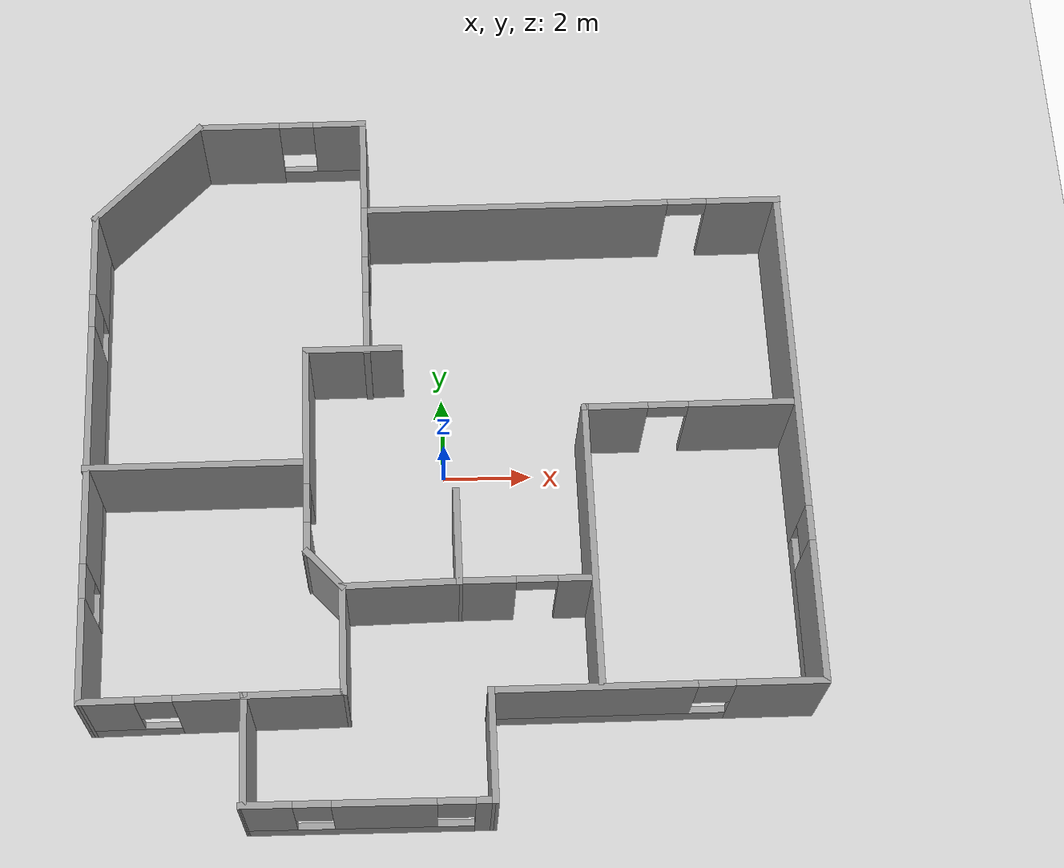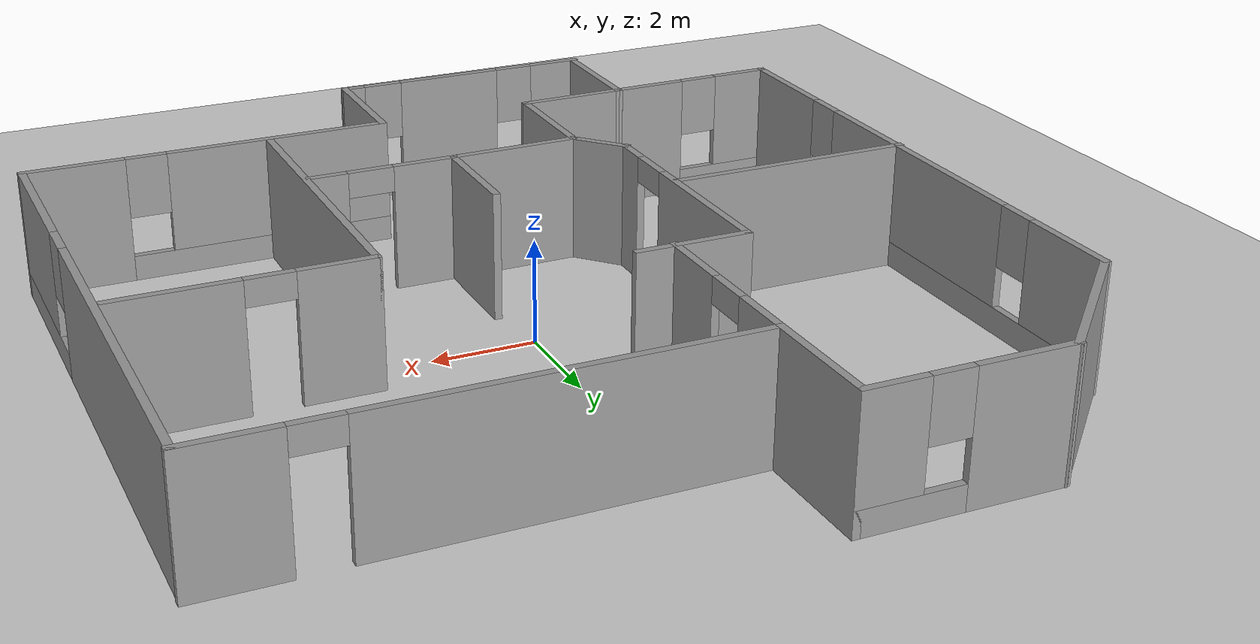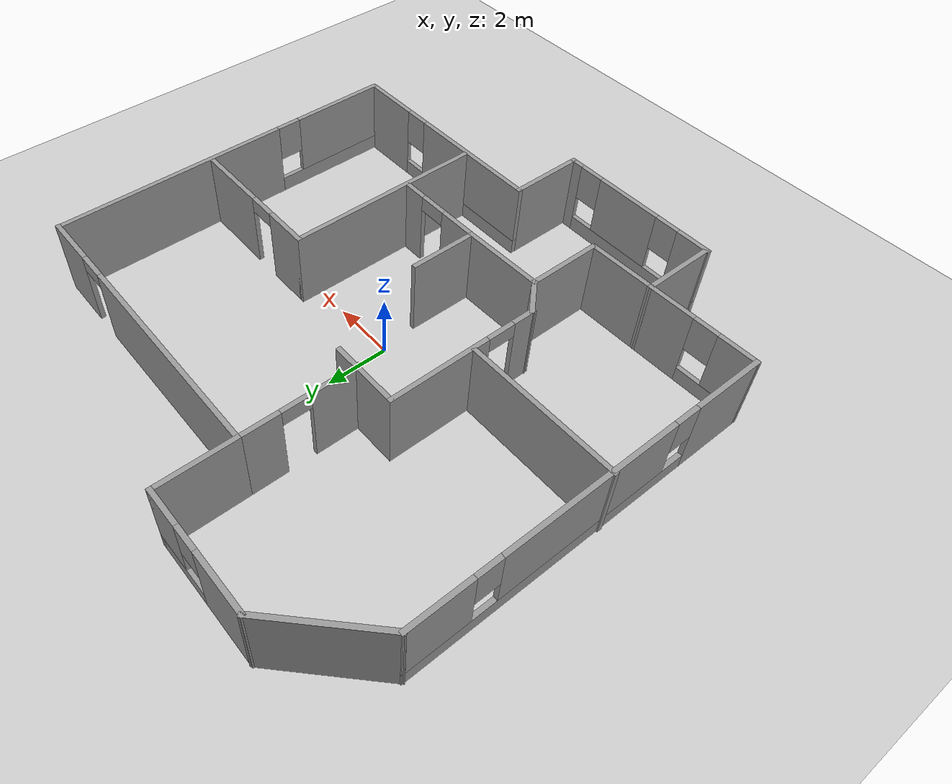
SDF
<?xml version='1.0'?>
<sdf version='1.6'>

 <world name="my_map">
    <!-- A global light source -->
    <include>
      <uri>model://sun</uri>
    </include>
    <!-- A ground plane -->
    <include>
      <uri>model://ground_plane</uri>
    </include>

    <model name='my_map'>
      <pose frame=''>0 0 0 0 -0 0</pose>
      <link name='Wall_0'>
        <pose frame=''>-3.05328 -0.191303 0 0 -0 -1.5708</pose>
        <visual name='Wall_0_Visual_0'>
          <pose frame=''>-0.840724 0 1.25 0 -0 0</pose>
          <geometry>
            <box>
              <size>3.31855 0.15 2.5</size>
            </box>
          </geometry>
          <material>
            <script>
              <uri>file://media/materials/scripts/gazebo.material</uri>
              <name>Gazebo/Grey</name>
            </script>
            <ambient>1 1 1 1</ambient>
          </material>
          <meta>
            <layer>0</layer>
          </meta>
        </visual>
        <collision name='Wall_0_Collision_0'>
          <geometry>
            <box>
              <size>3.31855 0.15 2.5</size>
            </box>
          </geometry>
          <pose frame=''>-0.840724 0 1.25 0 -0 0</pose>
        </collision>
        <visual name='Wall_0_Visual_1'>
          <pose frame=''>2.10928 0 1.25 0 -0 0</pose>
          <geometry>
            <box>
              <size>0.781449 0.15 2.5</size>
            </box>
          </geometry>
          <material>
            <script>
              <uri>file://media/materials/scripts/gazebo.material</uri>
              <name>Gazebo/Grey</name>
            </script>
            <ambient>1 1 1 1</ambient>
          </material>
          <meta>
            <layer>0</layer>
          </meta>
        </visual>
        <collision name='Wall_0_Collision_1'>
          <geometry>
            <box>
              <size>0.781449 0.15 2.5</size>
            </box>
          </geometry>
          <pose frame=''>2.10928 0 1.25 0 -0 0</pose>
        </collision>
        <visual name='Wall_0_Visual_2'>
          <pose frame=''>1.26855 0 2.25 0 -0 0</pose>
          <geometry>
            <box>
              <size>0.9 0.15 0.5</size>
            </box>
          </geometry>
          <material>
            <script>
              <uri>file://media/materials/scripts/gazebo.material</uri>
              <name>Gazebo/Grey</name>
            </script>
            <ambient>1 1 1 1</ambient>
          </material>
          <meta>
            <layer>0</layer>
          </meta>
        </visual>
        <collision name='Wall_0_Collision_2'>
          <geometry>
            <box>
              <size>0.9 0.15 0.5</size>
            </box>
          </geometry>
          <pose frame=''>1.26855 0 2.25 0 -0 0</pose>
        </collision>
      </link>
      <link name='Wall_1'>
        <collision name='Wall_1_Collision'>
          <geometry>
            <box>
              <size>1.26244 0.15 2.5</size>
            </box>
          </geometry>
          <pose frame=''>0 0 1.25 0 -0 0</pose>
        </collision>
        <visual name='Wall_1_Visual'>
          <pose frame=''>0 0 1.25 0 -0 0</pose>
          <geometry>
            <box>
              <size>1.26244 0.15 2.5</size>
            </box>
          </geometry>
          <material>
            <script>
              <uri>file://media/materials/scripts/gazebo.material</uri>
              <name>Gazebo/Grey</name>
            </script>
            <ambient>1 1 1 1</ambient>
          </material>
          <meta>
            <layer>0</layer>
          </meta>
        </visual>
        <pose frame=''>-2.67895 -3.00459 0 0 -0 -0.832576</pose>
      </link>
      <link name='Wall_10'>
        <pose frame=''>4.3597 -5.82465 0 0 -0 3.14159</pose>
        <visual name='Wall_10_Visual_0'>
          <pose frame=''>-2.62447 0 1.25 0 -0 0</pose>
          <geometry>
            <box>
              <size>2.00105 0.15 2.5</size>
            </box>
          </geometry>
          <material>
            <script>
              <uri>file://media/materials/scripts/gazebo.material</uri>
              <name>Gazebo/Grey</name>
            </script>
            <ambient>1 1 1 1</ambient>
          </material>
          <meta>
            <layer>0</layer>
          </meta>
        </visual>
        <collision name='Wall_10_Collision_0'>
          <geometry>
            <box>
              <size>2.00105 0.15 2.5</size>
            </box>
          </geometry>
          <pose frame=''>-2.62447 0 1.25 0 -0 0</pose>
        </collision>
        <visual name='Wall_10_Visual_1'>
          <pose frame=''>1.00053 0 0.25 0 -0 0</pose>
          <geometry>
            <box>
              <size>5.24895 0.15 0.5</size>
            </box>
          </geometry>
          <material>
            <script>
              <uri>file://media/materials/scripts/gazebo.material</uri>
              <name>Gazebo/Grey</name>
            </script>
            <ambient>1 1 1 1</ambient>
          </material>
          <meta>
            <layer>0</layer>
          </meta>
        </visual>
        <collision name='Wall_10_Collision_1'>
          <geometry>
            <box>
              <size>5.24895 0.15 0.5</size>
            </box>
          </geometry>
          <pose frame=''>1.00053 0 0.25 0 -0 0</pose>
        </collision>
        <visual name='Wall_10_Visual_2'>
          <pose frame=''>1.40053 0 1.5 0 -0 0</pose>
          <geometry>
            <box>
              <size>4.44895 0.15 2</size>
            </box>
          </geometry>
          <material>
            <script>
              <uri>file://media/materials/scripts/gazebo.material</uri>
              <name>Gazebo/Grey</name>
            </script>
            <ambient>1 1 1 1</ambient>
          </material>
          <meta>
            <layer>0</layer>
          </meta>
        </visual>
        <collision name='Wall_10_Collision_2'>
          <geometry>
            <box>
              <size>4.44895 0.15 2</size>
            </box>
          </geometry>
          <pose frame=''>1.40053 0 1.5 0 -0 0</pose>
        </collision>
        <visual name='Wall_10_Visual_3'>
          <pose frame=''>-1.22395 0 1.9 0 -0 0</pose>
          <geometry>
            <box>
              <size>0.8 0.15 1.2</size>
            </box>
          </geometry>
          <material>
            <script>
              <uri>file://media/materials/scripts/gazebo.material</uri>
              <name>Gazebo/Grey</name>
            </script>
            <ambient>1 1 1 1</ambient>
          </material>
          <meta>
            <layer>0</layer>
          </meta>
        </visual>
        <collision name='Wall_10_Collision_3'>
          <geometry>
            <box>
              <size>0.8 0.15 1.2</size>
            </box>
          </geometry>
          <pose frame=''>-1.22395 0 1.9 0 -0 0</pose>
        </collision>
      </link>
      <link name='Wall_11'>
        <collision name='Wall_11_Collision'>
          <geometry>
            <box>
              <size>2.5 0.15 2.5</size>
            </box>
          </geometry>
          <pose frame=''>0 0 1.25 0 -0 0</pose>
        </collision>
        <visual name='Wall_11_Visual'>
          <pose frame=''>0 0 1.25 0 -0 0</pose>
          <geometry>
            <box>
              <size>2.5 0.15 2.5</size>
            </box>
          </geometry>
          <material>
            <script>
              <uri>file://media/materials/scripts/gazebo.material</uri>
              <name>Gazebo/Grey</name>
            </script>
            <ambient>1 1 1 1</ambient>
          </material>
          <meta>
            <layer>0</layer>
          </meta>
        </visual>
        <pose frame=''>0.809703 -6.99965 0 0 -0 -1.5708</pose>
      </link>
      <link name='Wall_12'>
        <pose frame=''>-1.82121 -8.15442 0 0 -0 3.1339</pose>
        <visual name='Wall_12_Visual_0'>
          <pose frame=''>-2.46389 0 1.25 0 -0 0</pose>
          <geometry>
            <box>
              <size>0.484202 0.15 2.5</size>
            </box>
          </geometry>
          <material>
            <script>
              <uri>file://media/materials/scripts/gazebo.material</uri>
              <name>Gazebo/Grey</name>
            </script>
            <ambient>1 1 1 1</ambient>
          </material>
          <meta>
            <layer>0</layer>
          </meta>
        </visual>
        <collision name='Wall_12_Collision_0'>
          <geometry>
            <box>
              <size>0.484202 0.15 2.5</size>
            </box>
          </geometry>
          <pose frame=''>-2.46389 0 1.25 0 -0 0</pose>
        </collision>
        <visual name='Wall_12_Visual_1'>
          <pose frame=''>0.242101 0 0.25 0 -0 0</pose>
          <geometry>
            <box>
              <size>4.92778 0.15 0.5</size>
            </box>
          </geometry>
          <material>
            <script>
              <uri>file://media/materials/scripts/gazebo.material</uri>
              <name>Gazebo/Grey</name>
            </script>
            <ambient>1 1 1 1</ambient>
          </material>
          <meta>
            <layer>0</layer>
          </meta>
        </visual>
        <collision name='Wall_12_Collision_1'>
          <geometry>
            <box>
              <size>4.92778 0.15 0.5</size>
            </box>
          </geometry>
          <pose frame=''>0.242101 0 0.25 0 -0 0</pose>
        </collision>
        <visual name='Wall_12_Visual_2'>
          <pose frame=''>-0.324975 0 1.5 0 -0 0</pose>
          <geometry>
            <box>
              <size>2.19362 0.15 2</size>
            </box>
          </geometry>
          <material>
            <script>
              <uri>file://media/materials/scripts/gazebo.material</uri>
              <name>Gazebo/Grey</name>
            </script>
            <ambient>1 1 1 1</ambient>
          </material>
          <meta>
            <layer>0</layer>
          </meta>
        </visual>
        <collision name='Wall_12_Collision_2'>
          <geometry>
            <box>
              <size>2.19362 0.15 2</size>
            </box>
          </geometry>
          <pose frame=''>-0.324975 0 1.5 0 -0 0</pose>
        </collision>
        <visual name='Wall_12_Visual_3'>
          <pose frame=''>2.13891 0 1.5 0 -0 0</pose>
          <geometry>
            <box>
              <size>1.13415 0.15 2</size>
            </box>
          </geometry>
          <material>
            <script>
              <uri>file://media/materials/scripts/gazebo.material</uri>
              <name>Gazebo/Grey</name>
            </script>
            <ambient>1 1 1 1</ambient>
          </material>
          <meta>
            <layer>0</layer>
          </meta>
        </visual>
        <collision name='Wall_12_Collision_3'>
          <geometry>
            <box>
              <size>1.13415 0.15 2</size>
            </box>
          </geometry>
          <pose frame=''>2.13891 0 1.5 0 -0 0</pose>
        </collision>
        <visual name='Wall_12_Visual_4'>
          <pose frame=''>-1.82179 0 1.9 0 -0 0</pose>
          <geometry>
            <box>
              <size>0.8 0.15 1.2</size>
            </box>
          </geometry>
          <material>
            <script>
              <uri>file://media/materials/scripts/gazebo.material</uri>
              <name>Gazebo/Grey</name>
            </script>
            <ambient>1 1 1 1</ambient>
          </material>
          <meta>
            <layer>0</layer>
          </meta>
        </visual>
        <collision name='Wall_12_Collision_4'>
          <geometry>
            <box>
              <size>0.8 0.15 1.2</size>
            </box>
          </geometry>
          <pose frame=''>-1.82179 0 1.9 0 -0 0</pose>
        </collision>
        <visual name='Wall_12_Visual_5'>
          <pose frame=''>1.17184 0 1.9 0 -0 0</pose>
          <geometry>
            <box>
              <size>0.8 0.15 1.2</size>
            </box>
          </geometry>
          <material>
            <script>
              <uri>file://media/materials/scripts/gazebo.material</uri>
              <name>Gazebo/Grey</name>
            </script>
            <ambient>1 1 1 1</ambient>
          </material>
          <meta>
            <layer>0</layer>
          </meta>
        </visual>
        <collision name='Wall_12_Collision_5'>
          <geometry>
            <box>
              <size>0.8 0.15 1.2</size>
            </box>
          </geometry>
          <pose frame=''>1.17184 0 1.9 0 -0 0</pose>
        </collision>
      </link>
      <link name='Wall_13'>
        <collision name='Wall_13_Collision'>
          <geometry>
            <box>
              <size>2.5 0.15 2.5</size>
            </box>
          </geometry>
          <pose frame=''>0 0 1.25 0 -0 0</pose>
        </collision>
        <visual name='Wall_13_Visual'>
          <pose frame=''>0 0 1.25 0 -0 0</pose>
          <geometry>
            <box>
              <size>2.5 0.15 2.5</size>
            </box>
          </geometry>
          <material>
            <script>
              <uri>file://media/materials/scripts/gazebo.material</uri>
              <name>Gazebo/Grey</name>
            </script>
            <ambient>1 1 1 1</ambient>
          </material>
          <meta>
            <layer>0</layer>
          </meta>
        </visual>
        <pose frame=''>-4.41166 -6.95919 0 0 -0 1.5708</pose>
      </link>
      <link name='Wall_14'>
        <pose frame=''>-6.15098 -5.80442 0 0 -0 -3.12996</pose>
        <visual name='Wall_14_Visual_0'>
          <pose frame=''>-1.02837 0 1.25 0 -0 0</pose>
          <geometry>
            <box>
              <size>1.57214 0.15 2.5</size>
            </box>
          </geometry>
          <material>
            <script>
              <uri>file://media/materials/scripts/gazebo.material</uri>
              <name>Gazebo/Grey</name>
            </script>
            <ambient>1 1 1 1</ambient>
          </material>
          <meta>
            <layer>0</layer>
          </meta>
        </visual>
        <collision name='Wall_14_Collision_0'>
          <geometry>
            <box>
              <size>1.57214 0.15 2.5</size>
            </box>
          </geometry>
          <pose frame=''>-1.02837 0 1.25 0 -0 0</pose>
        </collision>
        <visual name='Wall_14_Visual_1'>
          <pose frame=''>0.786068 0 0.25 0 -0 0</pose>
          <geometry>
            <box>
              <size>2.05673 0.15 0.5</size>
            </box>
          </geometry>
          <material>
            <script>
              <uri>file://media/materials/scripts/gazebo.material</uri>
              <name>Gazebo/Grey</name>
            </script>
            <ambient>1 1 1 1</ambient>
          </material>
          <meta>
            <layer>0</layer>
          </meta>
        </visual>
        <collision name='Wall_14_Collision_1'>
          <geometry>
            <box>
              <size>2.05673 0.15 0.5</size>
            </box>
          </geometry>
          <pose frame=''>0.786068 0 0.25 0 -0 0</pose>
        </collision>
        <visual name='Wall_14_Visual_2'>
          <pose frame=''>1.18607 0 1.5 0 -0 0</pose>
          <geometry>
            <box>
              <size>1.25673 0.15 2</size>
            </box>
          </geometry>
          <material>
            <script>
              <uri>file://media/materials/scripts/gazebo.material</uri>
              <name>Gazebo/Grey</name>
            </script>
            <ambient>1 1 1 1</ambient>
          </material>
          <meta>
            <layer>0</layer>
          </meta>
        </visual>
        <collision name='Wall_14_Collision_2'>
          <geometry>
            <box>
              <size>1.25673 0.15 2</size>
            </box>
          </geometry>
          <pose frame=''>1.18607 0 1.5 0 -0 0</pose>
        </collision>
        <visual name='Wall_14_Visual_3'>
          <pose frame=''>0.157702 0 1.9 0 -0 0</pose>
          <geometry>
            <box>
              <size>0.8 0.15 1.2</size>
            </box>
          </geometry>
          <material>
            <script>
              <uri>file://media/materials/scripts/gazebo.material</uri>
              <name>Gazebo/Grey</name>
            </script>
            <ambient>1 1 1 1</ambient>
          </material>
          <meta>
            <layer>0</layer>
          </meta>
        </visual>
        <collision name='Wall_14_Collision_3'>
          <geometry>
            <box>
              <size>0.8 0.15 1.2</size>
            </box>
          </geometry>
          <pose frame=''>0.157702 0 1.9 0 -0 0</pose>
        </collision>
      </link>
      <link name='Wall_18'>
        <pose frame=''>-7.8903 -0.02465 0 0 -0 1.5708</pose>
        <visual name='Wall_18_Visual_0'>
          <pose frame=''>-4.68444 0 1.25 0 -0 0</pose>
          <geometry>
            <box>
              <size>2.38112 0.15 2.5</size>
            </box>
          </geometry>
          <material>
            <script>
              <uri>file://media/materials/scripts/gazebo.material</uri>
              <name>Gazebo/Grey</name>
            </script>
            <ambient>1 1 1 1</ambient>
          </material>
          <meta>
            <layer>0</layer>
          </meta>
        </visual>
        <collision name='Wall_18_Collision_0'>
          <geometry>
            <box>
              <size>2.38112 0.15 2.5</size>
            </box>
          </geometry>
          <pose frame=''>-4.68444 0 1.25 0 -0 0</pose>
        </collision>
        <visual name='Wall_18_Visual_1'>
          <pose frame=''>1.19056 0 0.25 0 -0 0</pose>
          <geometry>
            <box>
              <size>9.36888 0.15 0.5</size>
            </box>
          </geometry>
          <material>
            <script>
              <uri>file://media/materials/scripts/gazebo.material</uri>
              <name>Gazebo/Grey</name>
            </script>
            <ambient>1 1 1 1</ambient>
          </material>
          <meta>
            <layer>0</layer>
          </meta>
        </visual>
        <collision name='Wall_18_Collision_1'>
          <geometry>
            <box>
              <size>9.36888 0.15 0.5</size>
            </box>
          </geometry>
          <pose frame=''>1.19056 0 0.25 0 -0 0</pose>
        </collision>
        <visual name='Wall_18_Visual_2'>
          <pose frame=''>0.162791 0 1.5 0 -0 0</pose>
          <geometry>
            <box>
              <size>5.71335 0.15 2</size>
            </box>
          </geometry>
          <material>
            <script>
              <uri>file://media/materials/scripts/gazebo.material</uri>
              <name>Gazebo/Grey</name>
            </script>
            <ambient>1 1 1 1</ambient>
          </material>
          <meta>
            <layer>0</layer>
          </meta>
        </visual>
        <collision name='Wall_18_Collision_2'>
          <geometry>
            <box>
              <size>5.71335 0.15 2</size>
            </box>
          </geometry>
          <pose frame=''>0.162791 0 1.5 0 -0 0</pose>
        </collision>
        <visual name='Wall_18_Visual_3'>
          <pose frame=''>4.84723 0 1.5 0 -0 0</pose>
          <geometry>
            <box>
              <size>2.05553 0.15 2</size>
            </box>
          </geometry>
          <material>
            <script>
              <uri>file://media/materials/scripts/gazebo.material</uri>
              <name>Gazebo/Grey</name>
            </script>
            <ambient>1 1 1 1</ambient>
          </material>
          <meta>
            <layer>0</layer>
          </meta>
        </visual>
        <collision name='Wall_18_Collision_3'>
          <geometry>
            <box>
              <size>2.05553 0.15 2</size>
            </box>
          </geometry>
          <pose frame=''>4.84723 0 1.5 0 -0 0</pose>
        </collision>
        <visual name='Wall_18_Visual_4'>
          <pose frame=''>-3.09388 0 1.9 0 -0 0</pose>
          <geometry>
            <box>
              <size>0.8 0.15 1.2</size>
            </box>
          </geometry>
          <material>
            <script>
              <uri>file://media/materials/scripts/gazebo.material</uri>
              <name>Gazebo/Grey</name>
            </script>
            <ambient>1 1 1 1</ambient>
          </material>
          <meta>
            <layer>0</layer>
          </meta>
        </visual>
        <collision name='Wall_18_Collision_4'>
          <geometry>
            <box>
              <size>0.8 0.15 1.2</size>
            </box>
          </geometry>
          <pose frame=''>-3.09388 0 1.9 0 -0 0</pose>
        </collision>
        <visual name='Wall_18_Visual_5'>
          <pose frame=''>3.41947 0 1.9 0 -0 0</pose>
          <geometry>
            <box>
              <size>0.8 0.15 1.2</size>
            </box>
          </geometry>
          <material>
            <script>
              <uri>file://media/materials/scripts/gazebo.material</uri>
              <name>Gazebo/Grey</name>
            </script>
            <ambient>1 1 1 1</ambient>
          </material>
          <meta>
            <layer>0</layer>
          </meta>
        </visual>
        <collision name='Wall_18_Collision_5'>
          <geometry>
            <box>
              <size>0.8 0.15 1.2</size>
            </box>
          </geometry>
          <pose frame=''>3.41947 0 1.9 0 -0 0</pose>
        </collision>
      </link>
      <link name='Wall_19'>
        <collision name='Wall_19_Collision'>
          <geometry>
            <box>
              <size>3.5 0.15 2.5</size>
            </box>
          </geometry>
          <pose frame=''>0 0 1.25 0 -0 0</pose>
        </collision>
        <visual name='Wall_19_Visual'>
          <pose frame=''>0 0 1.25 0 -0 0</pose>
          <geometry>
            <box>
              <size>3.5 0.15 2.5</size>
            </box>
          </geometry>
          <material>
            <script>
              <uri>file://media/materials/scripts/gazebo.material</uri>
              <name>Gazebo/Grey</name>
            </script>
            <ambient>1 1 1 1</ambient>
          </material>
          <meta>
            <layer>0</layer>
          </meta>
        </visual>
        <pose frame=''>-6.70589 6.95975 0 0 -0 0.785398</pose>
      </link>
      <link name='Wall_2'>
        <collision name='Wall_2_Collision'>
          <geometry>
            <box>
              <size>2.67668 0.15 2.5</size>
            </box>
          </geometry>
          <pose frame=''>0 0 1.25 0 -0 0</pose>
        </collision>
        <visual name='Wall_2_Visual'>
          <pose frame=''>0 0 1.25 0 -0 0</pose>
          <geometry>
            <box>
              <size>2.67668 0.15 2.5</size>
            </box>
          </geometry>
          <material>
            <script>
              <uri>file://media/materials/scripts/gazebo.material</uri>
              <name>Gazebo/Grey</name>
            </script>
            <ambient>1 1 1 1</ambient>
          </material>
          <meta>
            <layer>0</layer>
          </meta>
        </visual>
        <pose frame=''>-1.04145 -3.39578 0 0 -0 0.016012</pose>
      </link>
      <link name='Wall_20'>
        <pose frame=''>-3.59649 8.14416 0 0 -0 0</pose>
        <visual name='Wall_20_Visual_0'>
          <pose frame=''>-1.01959 0 1.25 0 -0 0</pose>
          <geometry>
            <box>
              <size>1.96083 0.15 2.5</size>
            </box>
          </geometry>
          <material>
            <script>
              <uri>file://media/materials/scripts/gazebo.material</uri>
              <name>Gazebo/Grey</name>
            </script>
            <ambient>1 1 1 1</ambient>
          </material>
          <meta>
            <layer>0</layer>
          </meta>
        </visual>
        <collision name='Wall_20_Collision_0'>
          <geometry>
            <box>
              <size>1.96083 0.15 2.5</size>
            </box>
          </geometry>
          <pose frame=''>-1.01959 0 1.25 0 -0 0</pose>
        </collision>
        <visual name='Wall_20_Visual_1'>
          <pose frame=''>0.980412 0 0.25 0 -0 0</pose>
          <geometry>
            <box>
              <size>2.03918 0.15 0.5</size>
            </box>
          </geometry>
          <material>
            <script>
              <uri>file://media/materials/scripts/gazebo.material</uri>
              <name>Gazebo/Grey</name>
            </script>
            <ambient>1 1 1 1</ambient>
          </material>
          <meta>
            <layer>0</layer>
          </meta>
        </visual>
        <collision name='Wall_20_Collision_1'>
          <geometry>
            <box>
              <size>2.03918 0.15 0.5</size>
            </box>
          </geometry>
          <pose frame=''>0.980412 0 0.25 0 -0 0</pose>
        </collision>
        <visual name='Wall_20_Visual_2'>
          <pose frame=''>1.38041 0 1.5 0 -0 0</pose>
          <geometry>
            <box>
              <size>1.23917 0.15 2</size>
            </box>
          </geometry>
          <material>
            <script>
              <uri>file://media/materials/scripts/gazebo.material</uri>
              <name>Gazebo/Grey</name>
            </script>
            <ambient>1 1 1 1</ambient>
          </material>
          <meta>
            <layer>0</layer>
          </meta>
        </visual>
        <collision name='Wall_20_Collision_2'>
          <geometry>
            <box>
              <size>1.23917 0.15 2</size>
            </box>
          </geometry>
          <pose frame=''>1.38041 0 1.5 0 -0 0</pose>
        </collision>
        <visual name='Wall_20_Visual_3'>
          <pose frame=''>0.360825 0 1.9 0 -0 0</pose>
          <geometry>
            <box>
              <size>0.8 0.15 1.2</size>
            </box>
          </geometry>
          <material>
            <script>
              <uri>file://media/materials/scripts/gazebo.material</uri>
              <name>Gazebo/Grey</name>
            </script>
            <ambient>1 1 1 1</ambient>
          </material>
          <meta>
            <layer>0</layer>
          </meta>
        </visual>
        <collision name='Wall_20_Collision_3'>
          <geometry>
            <box>
              <size>0.8 0.15 1.2</size>
            </box>
          </geometry>
          <pose frame=''>0.360825 0 1.9 0 -0 0</pose>
        </collision>
      </link>
      <link name='Wall_21'>
        <collision name='Wall_21_Collision'>
          <geometry>
            <box>
              <size>2.5 0.15 2.5</size>
            </box>
          </geometry>
          <pose frame=''>0 0 1.25 0 -0 0</pose>
        </collision>
        <visual name='Wall_21_Visual'>
          <pose frame=''>0 0 1.25 0 -0 0</pose>
          <geometry>
            <box>
              <size>2.5 0.15 2.5</size>
            </box>
          </geometry>
          <material>
            <script>
              <uri>file://media/materials/scripts/gazebo.material</uri>
              <name>Gazebo/Grey</name>
            </script>
            <ambient>1 1 1 1</ambient>
          </material>
          <meta>
            <layer>0</layer>
          </meta>
        </visual>
        <pose frame=''>-1.67149 6.96916 0 0 -0 -1.5708</pose>
      </link>
      <link name='Wall_22'>
        <pose frame=''>3.12851 5.79416 0 0 -0 0</pose>
        <visual name='Wall_22_Visual_0'>
          <pose frame=''>-1.31356 0 1.25 0 -0 0</pose>
          <geometry>
            <box>
              <size>7.12287 0.15 2.5</size>
            </box>
          </geometry>
          <material>
            <script>
              <uri>file://media/materials/scripts/gazebo.material</uri>
              <name>Gazebo/Grey</name>
            </script>
            <ambient>1 1 1 1</ambient>
          </material>
          <meta>
            <layer>0</layer>
          </meta>
        </visual>
        <collision name='Wall_22_Collision_0'>
          <geometry>
            <box>
              <size>7.12287 0.15 2.5</size>
            </box>
          </geometry>
          <pose frame=''>-1.31356 0 1.25 0 -0 0</pose>
        </collision>
        <visual name='Wall_22_Visual_1'>
          <pose frame=''>4.01144 0 1.25 0 -0 0</pose>
          <geometry>
            <box>
              <size>1.72713 0.15 2.5</size>
            </box>
          </geometry>
          <material>
            <script>
              <uri>file://media/materials/scripts/gazebo.material</uri>
              <name>Gazebo/Grey</name>
            </script>
            <ambient>1 1 1 1</ambient>
          </material>
          <meta>
            <layer>0</layer>
          </meta>
        </visual>
        <collision name='Wall_22_Collision_1'>
          <geometry>
            <box>
              <size>1.72713 0.15 2.5</size>
            </box>
          </geometry>
          <pose frame=''>4.01144 0 1.25 0 -0 0</pose>
        </collision>
        <visual name='Wall_22_Visual_2'>
          <pose frame=''>2.69787 0 2.25 0 -0 0</pose>
          <geometry>
            <box>
              <size>0.9 0.15 0.5</size>
            </box>
          </geometry>
          <material>
            <script>
              <uri>file://media/materials/scripts/gazebo.material</uri>
              <name>Gazebo/Grey</name>
            </script>
            <ambient>1 1 1 1</ambient>
          </material>
          <meta>
            <layer>0</layer>
          </meta>
        </visual>
        <collision name='Wall_22_Collision_2'>
          <geometry>
            <box>
              <size>0.9 0.15 0.5</size>
            </box>
          </geometry>
          <pose frame=''>2.69787 0 2.25 0 -0 0</pose>
        </collision>
      </link>
      <link name='Wall_3'>
        <collision name='Wall_3_Collision'>
          <geometry>
            <box>
              <size>2.25 0.15 2.5</size>
            </box>
          </geometry>
          <pose frame=''>0 0 1.25 0 -0 0</pose>
        </collision>
        <visual name='Wall_3_Visual'>
          <pose frame=''>0 0 1.25 0 -0 0</pose>
          <geometry>
            <box>
              <size>2.25 0.15 2.5</size>
            </box>
          </geometry>
          <material>
            <script>
              <uri>file://media/materials/scripts/gazebo.material</uri>
              <name>Gazebo/Grey</name>
            </script>
            <ambient>1 1 1 1</ambient>
          </material>
          <meta>
            <layer>0</layer>
          </meta>
        </visual>
        <pose frame=''>0.221725 -2.32556 0 0 -0 1.5708</pose>
      </link>
      <link name='Wall_31'>
        <collision name='Wall_31_Collision'>
          <geometry>
            <box>
              <size>5 0.15 2.5</size>
            </box>
          </geometry>
          <pose frame=''>0 0 1.25 0 -0 0</pose>
        </collision>
        <visual name='Wall_31_Visual'>
          <pose frame=''>0 0 1.25 0 -0 0</pose>
          <geometry>
            <box>
              <size>5 0.15 2.5</size>
            </box>
          </geometry>
          <material>
            <script>
              <uri>file://media/materials/scripts/gazebo.material</uri>
              <name>Gazebo/Grey</name>
            </script>
            <ambient>1 1 1 1</ambient>
          </material>
          <meta>
            <layer>0</layer>
          </meta>
        </visual>
        <pose frame=''>-5.50351 -0.48892 0 0 -0 0</pose>
      </link>
      <link name='Wall_39'>
        <collision name='Wall_39_Collision'>
          <geometry>
            <box>
              <size>2.5 0.15 2.5</size>
            </box>
          </geometry>
          <pose frame=''>0 0 1.25 0 -0 0</pose>
        </collision>
        <visual name='Wall_39_Visual'>
          <pose frame=''>0 0 1.25 0 -0 0</pose>
          <geometry>
            <box>
              <size>2.5 0.15 2.5</size>
            </box>
          </geometry>
          <material>
            <script>
              <uri>file://media/materials/scripts/gazebo.material</uri>
              <name>Gazebo/Grey</name>
            </script>
            <ambient>1 1 1 1</ambient>
          </material>
          <meta>
            <layer>0</layer>
          </meta>
        </visual>
        <pose frame=''>-2.30463 -4.59101 0 0 -0 -1.5708</pose>
      </link>
      <link name='Wall_40'>
        <collision name='Wall_40_Collision'>
          <geometry>
            <box>
              <size>2.25711 0.15 2.5</size>
            </box>
          </geometry>
          <pose frame=''>0 0 1.25 0 -0 0</pose>
        </collision>
        <visual name='Wall_40_Visual'>
          <pose frame=''>0 0 1.25 0 -0 0</pose>
          <geometry>
            <box>
              <size>2.25711 0.15 2.5</size>
            </box>
          </geometry>
          <material>
            <script>
              <uri>file://media/materials/scripts/gazebo.material</uri>
              <name>Gazebo/Grey</name>
            </script>
            <ambient>1 1 1 1</ambient>
          </material>
          <meta>
            <layer>0</layer>
          </meta>
        </visual>
        <pose frame=''>-3.35815 -5.7751 0 0 -0 -3.13296</pose>
      </link>
      <link name='Wall_42'>
        <pose frame=''>-1.67149 3.99416 0 0 -0 -1.5708</pose>
        <visual name='Wall_42_Visual_0'>
          <pose frame=''>-1.22693 0 1.25 0 -0 0</pose>
          <geometry>
            <box>
              <size>1.29614 0.15 2.5</size>
            </box>
          </geometry>
          <material>
            <script>
              <uri>file://media/materials/scripts/gazebo.material</uri>
              <name>Gazebo/Grey</name>
            </script>
            <ambient>1 1 1 1</ambient>
          </material>
          <meta>
            <layer>0</layer>
          </meta>
        </visual>
        <collision name='Wall_42_Collision_0'>
          <geometry>
            <box>
              <size>1.29614 0.15 2.5</size>
            </box>
          </geometry>
          <pose frame=''>-1.22693 0 1.25 0 -0 0</pose>
        </collision>
        <visual name='Wall_42_Visual_1'>
          <pose frame=''>1.09807 0 1.25 0 -0 0</pose>
          <geometry>
            <box>
              <size>1.55386 0.15 2.5</size>
            </box>
          </geometry>
          <material>
            <script>
              <uri>file://media/materials/scripts/gazebo.material</uri>
              <name>Gazebo/Grey</name>
            </script>
            <ambient>1 1 1 1</ambient>
          </material>
          <meta>
            <layer>0</layer>
          </meta>
        </visual>
        <collision name='Wall_42_Collision_1'>
          <geometry>
            <box>
              <size>1.55386 0.15 2.5</size>
            </box>
          </geometry>
          <pose frame=''>1.09807 0 1.25 0 -0 0</pose>
        </collision>
        <visual name='Wall_42_Visual_2'>
          <pose frame=''>-0.128858 0 2.25 0 -0 0</pose>
          <geometry>
            <box>
              <size>0.9 0.15 0.5</size>
            </box>
          </geometry>
          <material>
            <script>
              <uri>file://media/materials/scripts/gazebo.material</uri>
              <name>Gazebo/Grey</name>
            </script>
            <ambient>1 1 1 1</ambient>
          </material>
          <meta>
            <layer>0</layer>
          </meta>
        </visual>
        <collision name='Wall_42_Collision_2'>
          <geometry>
            <box>
              <size>0.9 0.15 0.5</size>
            </box>
          </geometry>
          <pose frame=''>-0.128858 0 2.25 0 -0 0</pose>
        </collision>
      </link>
      <link name='Wall_44'>
        <collision name='Wall_44_Collision'>
          <geometry>
            <box>
              <size>6.5 0.15 2.5</size>
            </box>
          </geometry>
          <pose frame=''>0 0 1.25 0 -0 0</pose>
        </collision>
        <visual name='Wall_44_Visual'>
          <pose frame=''>0 0 1.25 0 -0 0</pose>
          <geometry>
            <box>
              <size>6.5 0.15 2.5</size>
            </box>
          </geometry>
          <material>
            <script>
              <uri>file://media/materials/scripts/gazebo.material</uri>
              <name>Gazebo/Grey</name>
            </script>
            <ambient>1 1 1 1</ambient>
          </material>
          <meta>
            <layer>0</layer>
          </meta>
        </visual>
        <pose frame=''>3.15632 -2.53269 0 0 -0 1.5708</pose>
      </link>
      <link name='Wall_45'>
        <pose frame=''>5.45632 0.64231 0 0 -0 0</pose>
        <visual name='Wall_45_Visual_0'>
          <pose frame=''>-1.63202 0 1.25 0 -0 0</pose>
          <geometry>
            <box>
              <size>1.48596 0.15 2.5</size>
            </box>
          </geometry>
          <material>
            <script>
              <uri>file://media/materials/scripts/gazebo.material</uri>
              <name>Gazebo/Grey</name>
            </script>
            <ambient>1 1 1 1</ambient>
          </material>
          <meta>
            <layer>0</layer>
          </meta>
        </visual>
        <collision name='Wall_45_Collision_0'>
          <geometry>
            <box>
              <size>1.48596 0.15 2.5</size>
            </box>
          </geometry>
          <pose frame=''>-1.63202 0 1.25 0 -0 0</pose>
        </collision>
        <visual name='Wall_45_Visual_1'>
          <pose frame=''>1.19298 0 1.25 0 -0 0</pose>
          <geometry>
            <box>
              <size>2.36404 0.15 2.5</size>
            </box>
          </geometry>
          <material>
            <script>
              <uri>file://media/materials/scripts/gazebo.material</uri>
              <name>Gazebo/Grey</name>
            </script>
            <ambient>1 1 1 1</ambient>
          </material>
          <meta>
            <layer>0</layer>
          </meta>
        </visual>
        <collision name='Wall_45_Collision_1'>
          <geometry>
            <box>
              <size>2.36404 0.15 2.5</size>
            </box>
          </geometry>
          <pose frame=''>1.19298 0 1.25 0 -0 0</pose>
        </collision>
        <visual name='Wall_45_Visual_2'>
          <pose frame=''>-0.439044 0 2.25 0 -0 0</pose>
          <geometry>
            <box>
              <size>0.9 0.15 0.5</size>
            </box>
          </geometry>
          <material>
            <script>
              <uri>file://media/materials/scripts/gazebo.material</uri>
              <name>Gazebo/Grey</name>
            </script>
            <ambient>1 1 1 1</ambient>
          </material>
          <meta>
            <layer>0</layer>
          </meta>
        </visual>
        <collision name='Wall_45_Collision_2'>
          <geometry>
            <box>
              <size>0.9 0.15 0.5</size>
            </box>
          </geometry>
          <pose frame=''>-0.439044 0 2.25 0 -0 0</pose>
        </collision>
      </link>
      <link name='Wall_47'>
        <pose frame=''>1.64672 -3.37555 0 0 -0 0</pose>
        <visual name='Wall_47_Visual_0'>
          <pose frame=''>-0.847266 0 1.25 0 -0 0</pose>
          <geometry>
            <box>
              <size>1.30547 0.15 2.5</size>
            </box>
          </geometry>
          <material>
            <script>
              <uri>file://media/materials/scripts/gazebo.material</uri>
              <name>Gazebo/Grey</name>
            </script>
            <ambient>1 1 1 1</ambient>
          </material>
          <meta>
            <layer>0</layer>
          </meta>
        </visual>
        <collision name='Wall_47_Collision_0'>
          <geometry>
            <box>
              <size>1.30547 0.15 2.5</size>
            </box>
          </geometry>
          <pose frame=''>-0.847266 0 1.25 0 -0 0</pose>
        </collision>
        <visual name='Wall_47_Visual_1'>
          <pose frame=''>1.10273 0 1.25 0 -0 0</pose>
          <geometry>
            <box>
              <size>0.794531 0.15 2.5</size>
            </box>
          </geometry>
          <material>
            <script>
              <uri>file://media/materials/scripts/gazebo.material</uri>
              <name>Gazebo/Grey</name>
            </script>
            <ambient>1 1 1 1</ambient>
          </material>
          <meta>
            <layer>0</layer>
          </meta>
        </visual>
        <collision name='Wall_47_Collision_1'>
          <geometry>
            <box>
              <size>0.794531 0.15 2.5</size>
            </box>
          </geometry>
          <pose frame=''>1.10273 0 1.25 0 -0 0</pose>
        </collision>
        <visual name='Wall_47_Visual_2'>
          <pose frame=''>0.255469 0 2.25 0 -0 0</pose>
          <geometry>
            <box>
              <size>0.9 0.15 0.5</size>
            </box>
          </geometry>
          <material>
            <script>
              <uri>file://media/materials/scripts/gazebo.material</uri>
              <name>Gazebo/Grey</name>
            </script>
            <ambient>1 1 1 1</ambient>
          </material>
          <meta>
            <layer>0</layer>
          </meta>
        </visual>
        <collision name='Wall_47_Collision_2'>
          <geometry>
            <box>
              <size>0.9 0.15 0.5</size>
            </box>
          </geometry>
          <pose frame=''>0.255469 0 2.25 0 -0 0</pose>
        </collision>
      </link>
      <link name='Wall_7'>
        <collision name='Wall_7_Collision'>
          <geometry>
            <box>
              <size>2.25 0.15 2.5</size>
            </box>
          </geometry>
          <pose frame=''>0 0 1.25 0 -0 0</pose>
        </collision>
        <visual name='Wall_7_Visual'>
          <pose frame=''>0 0 1.25 0 -0 0</pose>
          <geometry>
            <box>
              <size>2.25 0.15 2.5</size>
            </box>
          </geometry>
          <material>
            <script>
              <uri>file://media/materials/scripts/gazebo.material</uri>
              <name>Gazebo/Grey</name>
            </script>
            <ambient>1 1 1 1</ambient>
          </material>
          <meta>
            <layer>0</layer>
          </meta>
        </visual>
        <pose frame=''>-2.00327 2.2337 0 0 -0 0</pose>
      </link>
      <link name='Wall_9'>
        <pose frame=''>7.9097 -0.02465 0 0 -0 -1.5708</pose>
        <visual name='Wall_9_Visual_0'>
          <pose frame=''>-2.01534 0 1.25 0 -0 0</pose>
          <geometry>
            <box>
              <size>7.71932 0.15 2.5</size>
            </box>
          </geometry>
          <material>
            <script>
              <uri>file://media/materials/scripts/gazebo.material</uri>
              <name>Gazebo/Grey</name>
            </script>
            <ambient>1 1 1 1</ambient>
          </material>
          <meta>
            <layer>0</layer>
          </meta>
        </visual>
        <collision name='Wall_9_Collision_0'>
          <geometry>
            <box>
              <size>7.71932 0.15 2.5</size>
            </box>
          </geometry>
          <pose frame=''>-2.01534 0 1.25 0 -0 0</pose>
        </collision>
        <visual name='Wall_9_Visual_1'>
          <pose frame=''>3.85966 0 0.25 0 -0 0</pose>
          <geometry>
            <box>
              <size>4.03068 0.15 0.5</size>
            </box>
          </geometry>
          <material>
            <script>
              <uri>file://media/materials/scripts/gazebo.material</uri>
              <name>Gazebo/Grey</name>
            </script>
            <ambient>1 1 1 1</ambient>
          </material>
          <meta>
            <layer>0</layer>
          </meta>
        </visual>
        <collision name='Wall_9_Collision_1'>
          <geometry>
            <box>
              <size>4.03068 0.15 0.5</size>
            </box>
          </geometry>
          <pose frame=''>3.85966 0 0.25 0 -0 0</pose>
        </collision>
        <visual name='Wall_9_Visual_2'>
          <pose frame=''>4.25966 0 1.5 0 -0 0</pose>
          <geometry>
            <box>
              <size>3.23068 0.15 2</size>
            </box>
          </geometry>
          <material>
            <script>
              <uri>file://media/materials/scripts/gazebo.material</uri>
              <name>Gazebo/Grey</name>
            </script>
            <ambient>1 1 1 1</ambient>
          </material>
          <meta>
            <layer>0</layer>
          </meta>
        </visual>
        <collision name='Wall_9_Collision_2'>
          <geometry>
            <box>
              <size>3.23068 0.15 2</size>
            </box>
          </geometry>
          <pose frame=''>4.25966 0 1.5 0 -0 0</pose>
        </collision>
        <visual name='Wall_9_Visual_3'>
          <pose frame=''>2.24432 0 1.9 0 -0 0</pose>
          <geometry>
            <box>
              <size>0.8 0.15 1.2</size>
            </box>
          </geometry>
          <material>
            <script>
              <uri>file://media/materials/scripts/gazebo.material</uri>
              <name>Gazebo/Grey</name>
            </script>
            <ambient>1 1 1 1</ambient>
          </material>
          <meta>
            <layer>0</layer>
          </meta>
        </visual>
        <collision name='Wall_9_Collision_3'>
          <geometry>
            <box>
              <size>0.8 0.15 1.2</size>
            </box>
          </geometry>
          <pose frame=''>2.24432 0 1.9 0 -0 0</pose>
        </collision>
      </link>
      <static>1</static>
    </model>

  </world>

</sdf>
